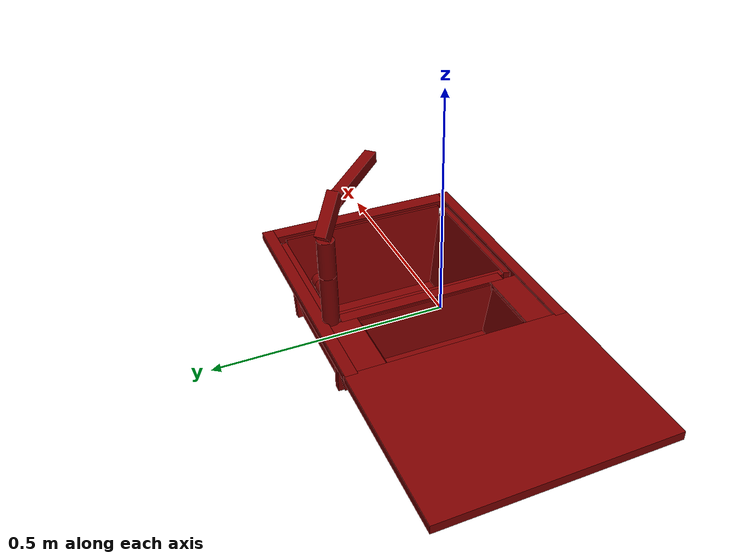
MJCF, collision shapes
<mujoco model="model">
  <asset>
    <material name="metal_Mat" specular="0.5" shininess="0.36" rgba="0.800000 0.800000 0.800000 1.000000"/>
    <material name="sink_Mat" specular="0.5" shininess="0.36" rgba="0.800000 0.800000 0.800000 1.000000"/>
    <material name="tap_Mat" specular="0.5" shininess="0.36" rgba="0.800000 0.800000 0.800000 1.000000"/>
    <mesh file="visuals/model_0.obj" name="model_0_vis" scale="1 1 1"/>
    <mesh file="visuals/model_1.obj" name="model_1_vis" scale="1 1 1"/>
    <mesh file="visuals/model_2.obj" name="model_2_vis" scale="1 1 1"/>
    <mesh file="visuals/spout_0.obj" name="spout_0_vis" scale="1 1 1"/>
    <mesh file="visuals/handle_0.obj" name="handle_0_vis" scale="1 1 1"/>
  </asset>
  <default>
    <default class="visual">
      <geom conaffinity="0" contype="0" group="1" type="mesh"/>
    </default>
    <default class="collision">
      <geom group="0" rgba="0.5 0 0 0.5" solimp="0.998 0.998 0.001" solref="0.001 2"/>
    </default>
    <default class="region">
      <geom group="1" conaffinity="0" contype="0" rgba="0 1 0 0"/>
    </default>
  </default>
  <worldbody>
    <body>
      <!-- exterior bounding box points -->
      <!-- interior bounding box points (LEFT) -->
      <!-- interior bounding box points (RIGHT) -->
      <body name="object">
        <geom solimp="0.998 0.998 0.001" solref="0.001 1" density="100" friction="0.95 0.3 0.1" type="mesh" mesh="model_0_vis" material="sink_Mat" class="visual"/>
        <geom solimp="0.998 0.998 0.001" solref="0.001 1" density="100" friction="0.95 0.3 0.1" type="mesh" mesh="model_1_vis" material="tap_Mat" class="visual"/>
        <geom solimp="0.998 0.998 0.001" solref="0.001 1" density="100" friction="0.95 0.3 0.1" type="mesh" mesh="model_2_vis" material="metal_Mat" class="visual"/>
        <!-- Bottom -->
        <geom class="collision" type="box" pos="0.27 0 -0.25" size="0.145 0.19 0.01"/>
        <!-- Left Wall -->
        <geom class="collision" type="box" pos="0.11 0 -0.14" size="0.01 0.21 0.11" axisangle="0 1 0 -3"/>
        <!-- Right Wall -->
        <geom class="collision" type="box" pos="0.44 0 -0.14" size="0.01 0.21 0.11" axisangle="0 1 0 10"/>
        <!-- Back Wall -->
        <geom class="collision" type="box" pos="0.27 0.205 -0.14" size="0.17 0.01 0.11" axisangle="1 0 0 -10"/>
        <!-- Front Wall -->
        <geom class="collision" type="box" pos="0.27 -0.2 -0.14" size="0.17 0.01 0.11" axisangle="1 0 0 12"/>
        <!-- Bottom 2 -->
        <geom class="collision" type="box" pos="-0.01 0 -0.16" size="0.07 0.15 0.01"/>
        <!-- Left Wall 2 -->
        <geom class="collision" type="box" pos="-0.09 0 -0.1" size="0.01 0.17 0.065" axisangle="0 1 0 -8"/>
        <!-- Right Wall 2 -->
        <geom class="collision" type="box" pos="0.075 0 -0.1" size="0.01 0.17 0.065" axisangle="0 1 0 7"/>
        <!-- Back Wall 2 -->
        <geom class="collision" type="box" pos="-0.01 0.16 -0.1" size="0.07 0.01 0.065" axisangle="1 0 0 -10"/>
        <!-- Front Wall 2 -->
        <geom class="collision" type="box" pos="-0.01 -0.16 -0.1" size="0.07 0.01 0.065" axisangle="1 0 0 10"/>
        <!-- Storage -->
        <geom class="collision" type="box" pos="-0.297 0 -0.034" size="0.203 0.26 0.01"/>
        <!-- Back Ledge -->
        <geom class="collision" type="box" pos="0.2 0.245 -0.034" size="0.3 0.014 0.01"/>
        <!-- Front Ledge -->
        <geom class="collision" type="box" pos="0.2 -0.245 -0.034" size="0.3 0.014 0.01"/>
        <!-- Right Ledge -->
        <geom class="collision" type="box" pos="0.48 0 -0.034" size="0.02 0.25 0.01"/>
        <!-- Divider Ledge -->
        <geom class="collision" type="box" pos="0.092 0 -0.04" size="0.014 0.2 0.01"/>
        <!-- Extended Back Ledge -->
        <geom class="collision" type="box" pos="-0.01 0.198 -0.04" size="0.09 0.033 0.01"/>
        <!-- Extended Front Ledge -->
        <geom class="collision" type="box" pos="-0.01 -0.198 -0.04" size="0.09 0.033 0.01"/>
        <!-- Faucet Base -->
        <geom class="collision" type="cylinder" pos="0.0915 0.2205 0.03" size="0.019 0.06 0"/>
        <!-- Handle Attach Point-->
        <geom class="collision" type="cylinder" pos="0.11 0.2205 0.0385" size="0.018 0.023 0" axisangle="0 1 0 90"/>
        <body name="spout">
          <joint axis="0 0 1" limited="true" name="faucet_joint" range="-135 45" pos="0.0915 0.2205 0.09" armature="2"/>
          <geom solimp="0.998 0.998 0.001" solref="0.001 1" density="100" friction="0.95 0.3 0.1" type="mesh" mesh="spout_0_vis" material="tap_Mat" class="visual"/>
          <geom class="collision" type="cylinder" pos="0.0915 0.2205 0.134" size="0.019 0.044 0"/>
          <geom class="collision" type="box" pos="0.107 0.205 0.222" size="0.013 0.05 0.015" quat="0.854 -0.354 -0.146 0.354"/>
          <geom class="collision" type="box" pos="0.192 0.12 0.248" size="0.013 0.0985 0.013" quat="0.923 -0.0322 -0.0134 0.382"/>
        </body>
        <body name="handle">
          <joint axis="1 0 0" limited="true" name="knob_joint" range="-90 90" pos="0.1332 0.2205 0.0385" armature="2"/>
          <joint axis="0 1 0" type="hinge" limited="true" name="knob_hinge_joint" range="0 10" pos="0.1332 0.2205 0.037" armature="2"/>
          <geom solimp="0.998 0.998 0.001" solref="0.001 1" density="100" friction="0.95 0.3 0.1" type="mesh" mesh="handle_0_vis" material="tap_Mat" class="visual"/>
          <geom class="collision" type="cylinder" pos="0.145 0.2205 0.0385" size="0.018 0.0118 0" axisangle="0 1 0 90"/>
          <geom class="collision" type="box" pos="0.1525 0.22 0.08353" size="0.0043 0.0021 0.032"/>
        </body>
        <geom class="region" name="reg_main" type="box" pos="0.0 0.0 -0.14200000000000002" size="0.5 0.259 0.11800000000000001"/>
        <geom class="region" name="reg_basin_left" type="box" pos="-0.010000000000000002 0.0 -0.095" size="0.07 0.16 0.05499999999999999"/>
        <geom class="region" name="reg_basin_right" type="box" pos="0.275 0.0024999999999999883 -0.135" size="0.165 0.2025 0.105"/>
      </body>
    </body>
  </worldbody>
</mujoco>
